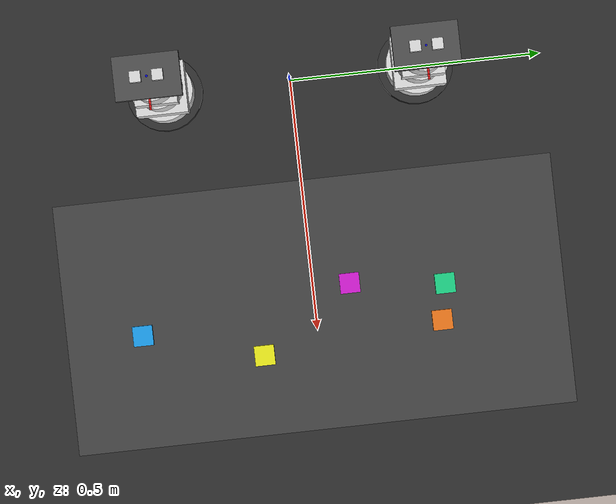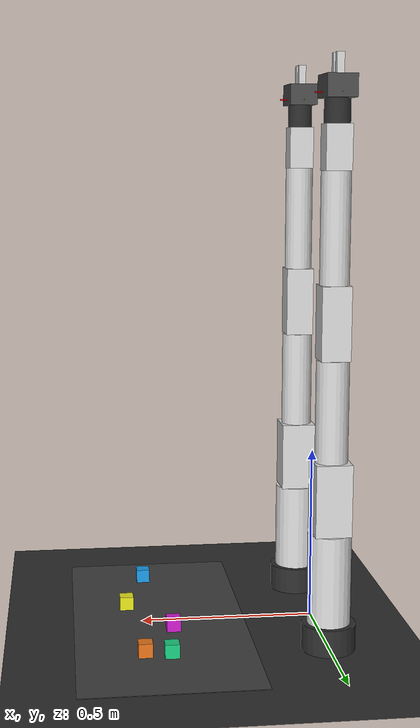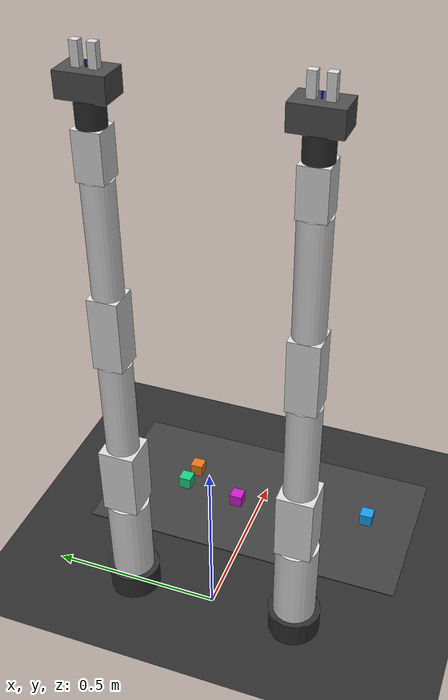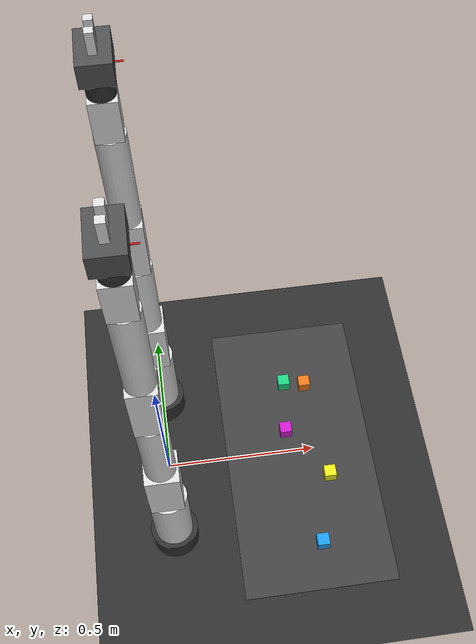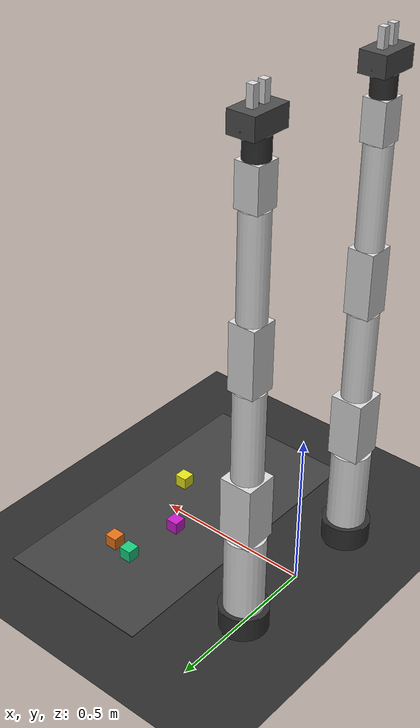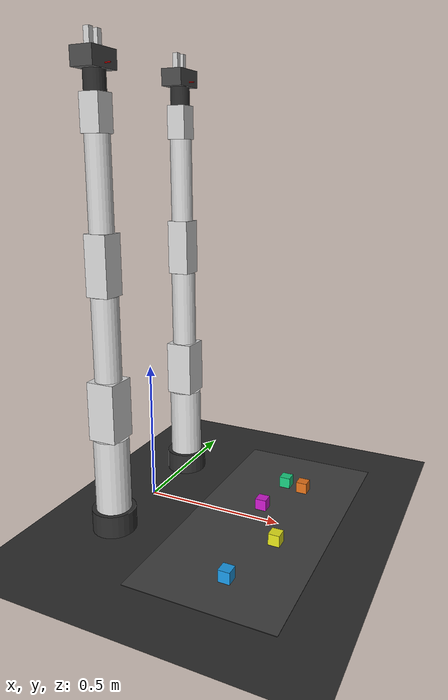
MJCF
<mujoco model="franka_panda_teleop">
    <compiler angle="degree" coordinate="local"/>
    <option timestep="0.002" integrator="RK4">
        <flag energy="enable"/>
    </option>

    <default>
        <joint damping="0.1" armature="0.01" limited="true"/>
        <geom condim="3" material="panda_material"/>
    </default>

    <asset>
        <texture type="skybox" builtin="gradient" rgb1="0.3 0.5 0.7" rgb2="0 0 0" width="512" height="512"/>
        <texture name="grid" type="2d" builtin="checker" rgb1="0.15 0.15 0.15" rgb2="0.2 0.2 0.2" width="512" height="512" mark="edge" markrgb="0.3 0.3 0.3"/>
        <material name="grid_material" texture="grid" texrepeat="2 2" texuniform="true"/>
        <material name="panda_material" rgba="0.85 0.85 0.85 1.0"/>
        <material name="joint_material" rgba="0.18 0.18 0.18 1.0"/>
        <material name="gripper_material" rgba="0.3 0.3 0.3 1.0"/>
    </asset>

    <worldbody>
        <light pos="0 0 3" dir="0 0 -1" directional="true" castshadow="true"/>
        <geom name="floor" type="plane" size="2 2 0.1" material="grid_material"/>

        <!-- Manipulation Workspace Table (Surface at Z = 0) -->
        <body name="table" pos="0.45 0.0 0.0">
            <geom name="table_top" type="box" size="0.25 0.50 0.01" pos="0 0 -0.01" rgba="0.25 0.25 0.25 1.0"/>
        </body>

        <!-- Manipulation Cube Object 0 -->
        <body name="cube_0" pos="0.508 0.250 0.02">
            <joint name="cube_joint_0" type="free"/>
            <geom name="cube_geom_0" type="box" size="0.02 0.02 0.02" rgba="0.9 0.45 0.1 1.0" mass="0.05" condim="6" friction="1.0 0.005 0.0001"/>
        </body>
        <!-- Manipulation Cube Object 1 -->
        <body name="cube_1" pos="0.475 -0.347 0.02">
            <joint name="cube_joint_1" type="free"/>
            <geom name="cube_geom_1" type="box" size="0.02 0.02 0.02" rgba="0.1 0.6 0.9 1.0" mass="0.05" condim="6" friction="1.0 0.005 0.0001"/>
        </body>
        <!-- Manipulation Cube Object 2 -->
        <body name="cube_2" pos="0.415 0.074 0.02">
            <joint name="cube_joint_2" type="free"/>
            <geom name="cube_geom_2" type="box" size="0.02 0.02 0.02" rgba="0.8 0.1 0.8 1.0" mass="0.05" condim="6" friction="1.0 0.005 0.0001"/>
        </body>
        <!-- Manipulation Cube Object 3 -->
        <body name="cube_3" pos="0.540 -0.110 0.02">
            <joint name="cube_joint_3" type="free"/>
            <geom name="cube_geom_3" type="box" size="0.02 0.02 0.02" rgba="0.9 0.9 0.1 1.0" mass="0.05" condim="6" friction="1.0 0.005 0.0001"/>
        </body>
        <!-- Manipulation Cube Object 4 -->
        <body name="cube_4" pos="0.436 0.263 0.02">
            <joint name="cube_joint_4" type="free"/>
            <geom name="cube_geom_4" type="box" size="0.02 0.02 0.02" rgba="0.1 0.8 0.5 1.0" mass="0.05" condim="6" friction="1.0 0.005 0.0001"/>
        </body>

        <!-- 7-DOF Franka Emika Panda Robot Arm (_left) -->
        <body name="base_left" pos="0 0.25 0.0">
            <geom name="base_geom_left" type="cylinder" size="0.075 0.05" pos="0 0 0.025" material="joint_material"/>

            <body name="link1_left" pos="0 0 0.05">
                <joint name="joint1_left" type="hinge" axis="0 0 1" range="-166 166"/>
                <geom name="link1_geom_left" type="cylinder" size="0.06 0.14" pos="0 0 0.14"/>

                <body name="link2_left" pos="0 0 0.28">
                    <joint name="joint2_left" type="hinge" axis="0 1 0" range="-101 101"/>
                    <geom name="link2_geom_left" type="box" size="0.05 0.05 0.1" pos="0 0 0.1"/>

                    <body name="link3_left" pos="0 0 0.2">
                        <joint name="joint3_left" type="hinge" axis="0 0 1" range="-166 166"/>
                        <geom name="link3_geom_left" type="cylinder" size="0.045 0.14" pos="0 0 0.14"/>

                        <body name="link4_left" pos="0 0 0.28">
                            <joint name="joint4_left" type="hinge" axis="0 -1 0" range="-176 0"/>
                            <geom name="link4_geom_left" type="box" size="0.04 0.04 0.1" pos="0 0 0.1"/>

                            <body name="link5_left" pos="0 0 0.2">
                                <joint name="joint5_left" type="hinge" axis="0 0 1" range="-166 166"/>
                                <geom name="link5_geom_left" type="cylinder" size="0.04 0.15" pos="0 0 0.15"/>

                                <body name="link6_left" pos="0 0 0.3">
                                    <joint name="joint6_left" type="hinge" axis="0 1 0" range="-5 215"/>
                                    <geom name="link6_geom_left" type="box" size="0.035 0.035 0.06" pos="0 0 0.06"/>

                                    <body name="link7_left" pos="0 0 0.12">
                                        <joint name="joint7_left" type="hinge" axis="0 0 1" range="-166 166"/>
                                        <geom name="link7_geom_left" type="cylinder" size="0.035 0.04" pos="0 0 0.04" material="joint_material"/>

                                        <body name="hand_left" pos="0 0 0.08">
                                            <geom name="hand_geom_left" type="box" size="0.04 0.06 0.03" pos="0 0 0.015" material="gripper_material"/>

                                            <body name="finger_left_left" pos="0 0.02 0.03">
                                                <joint name="finger_joint1_left" type="slide" axis="0 1 0" range="0 0.04"/>
                                                <geom name="finger_left_geom_left" type="box" size="0.01 0.01 0.035" pos="0 0 0.035" material="panda_material" condim="4" friction="1.0 0.005 0.0001"/>
                                            </body>

                                            <body name="finger_right_left" pos="0 -0.02 0.03">
                                                <joint name="finger_joint2_left" type="slide" axis="0 -1 0" range="0 0.04"/>
                                                <geom name="finger_right_geom_left" type="box" size="0.01 0.01 0.035" pos="0 0 0.035" material="panda_material" condim="4" friction="1.0 0.005 0.0001"/>
                                            </body>
                                        </body>
                                    </body>
                                </body>
                            </body>
                        </body>
                    </body>
                </body>
            </body>
        </body>

        <!-- 7-DOF Franka Emika Panda Robot Arm (_right) -->
        <body name="base_right" pos="0 -0.25 0.0">
            <geom name="base_geom_right" type="cylinder" size="0.075 0.05" pos="0 0 0.025" material="joint_material"/>

            <body name="link1_right" pos="0 0 0.05">
                <joint name="joint1_right" type="hinge" axis="0 0 1" range="-166 166"/>
                <geom name="link1_geom_right" type="cylinder" size="0.06 0.14" pos="0 0 0.14"/>

                <body name="link2_right" pos="0 0 0.28">
                    <joint name="joint2_right" type="hinge" axis="0 1 0" range="-101 101"/>
                    <geom name="link2_geom_right" type="box" size="0.05 0.05 0.1" pos="0 0 0.1"/>

                    <body name="link3_right" pos="0 0 0.2">
                        <joint name="joint3_right" type="hinge" axis="0 0 1" range="-166 166"/>
                        <geom name="link3_geom_right" type="cylinder" size="0.045 0.14" pos="0 0 0.14"/>

                        <body name="link4_right" pos="0 0 0.28">
                            <joint name="joint4_right" type="hinge" axis="0 -1 0" range="-176 0"/>
                            <geom name="link4_geom_right" type="box" size="0.04 0.04 0.1" pos="0 0 0.1"/>

                            <body name="link5_right" pos="0 0 0.2">
                                <joint name="joint5_right" type="hinge" axis="0 0 1" range="-166 166"/>
                                <geom name="link5_geom_right" type="cylinder" size="0.04 0.15" pos="0 0 0.15"/>

                                <body name="link6_right" pos="0 0 0.3">
                                    <joint name="joint6_right" type="hinge" axis="0 1 0" range="-5 215"/>
                                    <geom name="link6_geom_right" type="box" size="0.035 0.035 0.06" pos="0 0 0.06"/>

                                    <body name="link7_right" pos="0 0 0.12">
                                        <joint name="joint7_right" type="hinge" axis="0 0 1" range="-166 166"/>
                                        <geom name="link7_geom_right" type="cylinder" size="0.035 0.04" pos="0 0 0.04" material="joint_material"/>

                                        <body name="hand_right" pos="0 0 0.08">
                                            <geom name="hand_geom_right" type="box" size="0.04 0.06 0.03" pos="0 0 0.015" material="gripper_material"/>

                                            <body name="finger_left_right" pos="0 0.02 0.03">
                                                <joint name="finger_joint1_right" type="slide" axis="0 1 0" range="0 0.04"/>
                                                <geom name="finger_left_geom_right" type="box" size="0.01 0.01 0.035" pos="0 0 0.035" material="panda_material" condim="4" friction="1.0 0.005 0.0001"/>
                                            </body>

                                            <body name="finger_right_right" pos="0 -0.02 0.03">
                                                <joint name="finger_joint2_right" type="slide" axis="0 -1 0" range="0 0.04"/>
                                                <geom name="finger_right_geom_right" type="box" size="0.01 0.01 0.035" pos="0 0 0.035" material="panda_material" condim="4" friction="1.0 0.005 0.0001"/>
                                            </body>
                                        </body>
                                    </body>
                                </body>
                            </body>
                        </body>
                    </body>
                </body>
            </body>
        </body>

        <!-- Mocap Target for _left -->
        <body name="mocap_target_left" mocap="true" pos="0.0 0.25 1.51">
            <geom name="mocap_geom_left" type="sphere" size="0.02" rgba="0 1 0 0.4" contype="0" conaffinity="0"/>
            <geom type="cylinder" size="0.002" fromto="0 0 0 0.06 0 0" rgba="1 0 0 0.8" contype="0" conaffinity="0"/>
            <geom type="cylinder" size="0.002" fromto="0 0 0 0 0.06 0" rgba="0 1 0 0.8" contype="0" conaffinity="0"/>
            <geom type="cylinder" size="0.002" fromto="0 0 0 0 0 0.06" rgba="0 0 1 0.8" contype="0" conaffinity="0"/>
        </body>

        <!-- Mocap Target for _right -->
        <body name="mocap_target_right" mocap="true" pos="0.0 -0.25 1.51">
            <geom name="mocap_geom_right" type="sphere" size="0.02" rgba="0 1 0 0.4" contype="0" conaffinity="0"/>
            <geom type="cylinder" size="0.002" fromto="0 0 0 0.06 0 0" rgba="1 0 0 0.8" contype="0" conaffinity="0"/>
            <geom type="cylinder" size="0.002" fromto="0 0 0 0 0.06 0" rgba="0 1 0 0.8" contype="0" conaffinity="0"/>
            <geom type="cylinder" size="0.002" fromto="0 0 0 0 0 0.06" rgba="0 0 1 0.8" contype="0" conaffinity="0"/>
        </body>
    </worldbody>

    <!-- Weld constraints to drag hands with mocaps -->
    <equality>
        <weld name="teleop_weld_left" body1="hand_left" body2="mocap_target_left"/>
        <weld name="teleop_weld_right" body1="hand_right" body2="mocap_target_right"/>
    </equality>

    <!-- Gripper position controllers -->
    <actuator>
        <position name="finger_actuator1_left" joint="finger_joint1_left" ctrlrange="0 0.04" kp="100"/>
        <position name="finger_actuator2_left" joint="finger_joint2_left" ctrlrange="0 0.04" kp="100"/>
        <position name="finger_actuator1_right" joint="finger_joint1_right" ctrlrange="0 0.04" kp="100"/>
        <position name="finger_actuator2_right" joint="finger_joint2_right" ctrlrange="0 0.04" kp="100"/>
    </actuator>
</mujoco>
